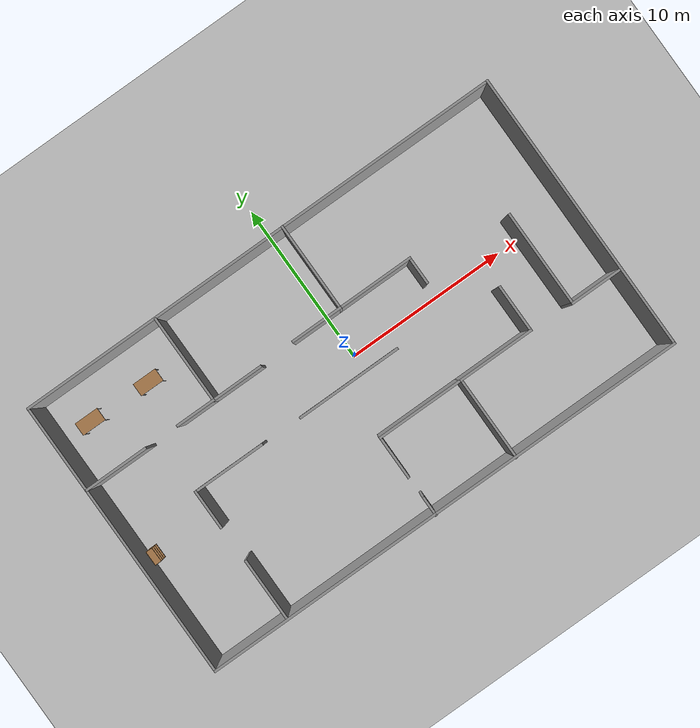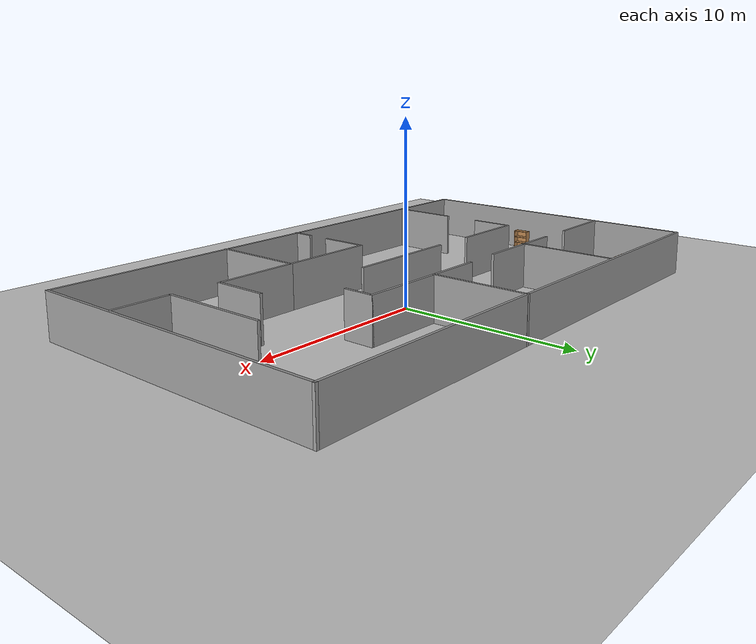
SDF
<sdf version="1.7">
 <world name="default">
  <light name="sun" type="directional">
   <pose>0 0 10 0 -0 0</pose>
   <diffuse>0.8 0.8 0.8 1</diffuse>
   <specular>0.2 0.2 0.2 1</specular>
   <attenuation>
    <range>1000</range>
    <constant>0.9</constant>
    <linear>0.01</linear>
    <quadratic>0.001</quadratic>
   </attenuation>
   <direction>-0.5 0.1 -0.9</direction>
   <spot><inner_angle>0</inner_angle><outer_angle>0</outer_angle><falloff>0</falloff></spot>
  </light>
  <model name="ground_plane">
   <static>1</static>
   <link name="link">
    <collision name="collision">
     <geometry><plane><normal>0 0 1</normal><size>100 100</size></plane></geometry>
     <surface><friction><ode><mu>100</mu><mu2>50</mu2></ode></friction></surface>
    </collision>
    <visual name="visual">
     <cast_shadows>0</cast_shadows>
     <geometry><plane><normal>0 0 1</normal><size>100 100</size></plane></geometry>
     <material>
      <script><uri>file://media/materials/scripts/gazebo.material</uri><name>Gazebo/Grey</name></script>
     </material>
    </visual>
   </link>
  </model>
  <gravity>0 0 -9.8</gravity>
  <magnetic_field>6e-06 2.3e-05 -4.2e-05</magnetic_field>
  <atmosphere type="adiabatic"/>
  <physics type="ode">
   <max_step_size>0.001</max_step_size>
   <real_time_factor>1</real_time_factor>
   <real_time_update_rate>1000</real_time_update_rate>
  </physics>
  <scene><ambient>0.4 0.4 0.4 1</ambient><background>0.7 0.7 0.7 1</background><shadows>1</shadows></scene>
  <audio><device>default</device></audio>
  <spherical_coordinates>
   <surface_model>EARTH_WGS84</surface_model>
   <latitude_deg>0</latitude_deg>
   <longitude_deg>0</longitude_deg>
   <elevation>0</elevation>
   <heading_deg>0</heading_deg>
  </spherical_coordinates>
  <model name="maze">
   <pose>-0.772899 -0.835081 0 0 -0 0</pose>
   <link name="Wall_13">
    <collision name="Wall_13_Collision">
     <geometry><box><size>30.5 0.15 2.5</size></box></geometry>
     <pose>0 0 1.25 0 -0 0</pose>
    </collision>
    <visual name="Wall_13_Visual">
     <pose>0 0 1.25 0 -0 0</pose>
     <geometry><box><size>30.5 0.15 2.5</size></box></geometry>
     <material>
      <script><uri>file://media/materials/scripts/gazebo.material</uri><name>Gazebo/Grey</name></script>
      <ambient>1 1 1 1</ambient>
     </material>
     <meta><layer>0</layer></meta>
    </visual>
    <pose>0 -8.65815 0 0 -0 3.14159</pose>
   </link>
   <link name="Wall_22">
    <collision name="Wall_22_Collision">
     <geometry><box><size>4 0.15 2.5</size></box></geometry>
     <pose>0 0 1.25 0 -0 0</pose>
    </collision>
    <visual name="Wall_22_Visual">
     <pose>0 0 1.25 0 -0 0</pose>
     <geometry><box><size>4 0.15 2.5</size></box></geometry>
     <material>
      <script><uri>file://media/materials/scripts/gazebo.material</uri><name>Gazebo/Grey</name></script>
      <ambient>1 1 1 1</ambient>
     </material>
     <meta><layer>0</layer></meta>
    </visual>
    <pose>-13.229 3.28702 0 0 -0 0</pose>
   </link>
   <link name="Wall_48">
    <collision name="Wall_48_Collision">
     <geometry><box><size>2.5 0.15 2.5</size></box></geometry>
     <pose>0 0 1.25 0 -0 0</pose>
    </collision>
    <visual name="Wall_48_Visual">
     <pose>0 0 1.25 0 -0 0</pose>
     <geometry><box><size>2.5 0.15 2.5</size></box></geometry>
     <material>
      <script><uri>file://media/materials/scripts/gazebo.material</uri><name>Gazebo/Grey</name></script>
      <ambient>1 1 1 1</ambient>
     </material>
     <meta><layer>0</layer></meta>
    </visual>
    <pose>-7.97039 3.27397 0 0 -0 0</pose>
   </link>
   <link name="Wall_49">
    <collision name="Wall_49_Collision">
     <geometry><box><size>5.5 0.15 2.5</size></box></geometry>
     <pose>0 0 1.25 0 -0 0</pose>
    </collision>
    <visual name="Wall_49_Visual">
     <pose>0 0 1.25 0 -0 0</pose>
     <geometry><box><size>5.5 0.15 2.5</size></box></geometry>
     <material>
      <script><uri>file://media/materials/scripts/gazebo.material</uri><name>Gazebo/Grey</name></script>
      <ambient>1 1 1 1</ambient>
     </material>
     <meta><layer>0</layer></meta>
    </visual>
    <pose>-6.79539 5.94897 0 0 -0 1.5708</pose>
   </link>
   <link name="Wall_51">
    <collision name="Wall_51_Collision">
     <geometry><box><size>3.25 0.15 2.5</size></box></geometry>
     <pose>0 0 1.25 0 -0 0</pose>
    </collision>
    <visual name="Wall_51_Visual">
     <pose>0 0 1.25 0 -0 0</pose>
     <geometry><box><size>3.25 0.15 2.5</size></box></geometry>
     <material>
      <script><uri>file://media/materials/scripts/gazebo.material</uri><name>Gazebo/Grey</name></script>
      <ambient>1 1 1 1</ambient>
     </material>
     <meta><layer>0</layer></meta>
    </visual>
    <pose>-5.2454 3.27397 0 0 -0 0</pose>
   </link>
   <link name="Wall_53">
    <collision name="Wall_53_Collision">
     <geometry><box><size>3.25 0.15 2.5</size></box></geometry>
     <pose>0 0 1.25 0 -0 0</pose>
    </collision>
    <visual name="Wall_53_Visual">
     <pose>0 0 1.25 0 -0 0</pose>
     <geometry><box><size>3.25 0.15 2.5</size></box></geometry>
     <material>
      <script><uri>file://media/materials/scripts/gazebo.material</uri><name>Gazebo/Grey</name></script>
      <ambient>1 1 1 1</ambient>
     </material>
     <meta><layer>0</layer></meta>
    </visual>
    <pose>0.092063 3.35377 0 0 -0 0</pose>
   </link>
   <link name="Wall_59">
    <collision name="Wall_59_Collision">
     <geometry><box><size>5.5 0.15 2.5</size></box></geometry>
     <pose>0 0 1.25 0 -0 0</pose>
    </collision>
    <visual name="Wall_59_Visual">
     <pose>0 0 1.25 0 -0 0</pose>
     <geometry><box><size>5.5 0.15 2.5</size></box></geometry>
     <material>
      <script><uri>file://media/materials/scripts/gazebo.material</uri><name>Gazebo/Grey</name></script>
      <ambient>1 1 1 1</ambient>
     </material>
     <meta><layer>0</layer></meta>
    </visual>
    <pose>1.64206 6.02877 0 0 -0 1.5708</pose>
   </link>
   <link name="Wall_6">
    <collision name="Wall_6_Collision">
     <geometry><box><size>17.5 0.15 2.5</size></box></geometry>
     <pose>0 0 1.25 0 -0 0</pose>
    </collision>
    <visual name="Wall_6_Visual">
     <pose>0 0 1.25 0 -0 0</pose>
     <geometry><box><size>17.5 0.15 2.5</size></box></geometry>
     <material>
      <script><uri>file://media/materials/scripts/gazebo.material</uri><name>Gazebo/Grey</name></script>
      <ambient>1 1 1 1</ambient>
     </material>
     <meta><layer>0</layer></meta>
    </visual>
    <pose>15.175 0.016851 0 0 -0 1.5708</pose>
   </link>
   <link name="Wall_61">
    <collision name="Wall_61_Collision">
     <geometry><box><size>3.25 0.15 2.5</size></box></geometry>
     <pose>0 0 1.25 0 -0 0</pose>
    </collision>
    <visual name="Wall_61_Visual">
     <pose>0 0 1.25 0 -0 0</pose>
     <geometry><box><size>3.25 0.15 2.5</size></box></geometry>
     <material>
      <script><uri>file://media/materials/scripts/gazebo.material</uri><name>Gazebo/Grey</name></script>
      <ambient>1 1 1 1</ambient>
     </material>
     <meta><layer>0</layer></meta>
    </visual>
    <pose>13.5256 -3.71427 0 0 -0 3.14159</pose>
   </link>
   <link name="Wall_63">
    <collision name="Wall_63_Collision">
     <geometry><box><size>4.75 0.15 2.5</size></box></geometry>
     <pose>0 0 1.25 0 -0 0</pose>
    </collision>
    <visual name="Wall_63_Visual">
     <pose>0 0 1.25 0 -0 0</pose>
     <geometry><box><size>4.75 0.15 2.5</size></box></geometry>
     <material>
      <script><uri>file://media/materials/scripts/gazebo.material</uri><name>Gazebo/Grey</name></script>
      <ambient>1 1 1 1</ambient>
     </material>
     <meta><layer>0</layer></meta>
    </visual>
    <pose>6.9904 -3.59291 0 0 -0 3.14159</pose>
   </link>
   <link name="Wall_68">
    <collision name="Wall_68_Collision">
     <geometry><box><size>5.25 0.15 2.5</size></box></geometry>
     <pose>0 0 1.25 0 -0 0</pose>
    </collision>
    <visual name="Wall_68_Visual">
     <pose>0 0 1.25 0 -0 0</pose>
     <geometry><box><size>5.25 0.15 2.5</size></box></geometry>
     <material>
      <script><uri>file://media/materials/scripts/gazebo.material</uri><name>Gazebo/Grey</name></script>
      <ambient>1 1 1 1</ambient>
     </material>
     <meta><layer>0</layer></meta>
    </visual>
    <pose>4.6904 -6.14291 0 0 -0 -1.5708</pose>
   </link>
   <link name="Wall_7">
    <collision name="Wall_7_Collision">
     <geometry><box><size>30.5 0.15 2.5</size></box></geometry>
     <pose>0 0 1.25 0 -0 0</pose>
    </collision>
    <visual name="Wall_7_Visual">
     <pose>0 0 1.25 0 -0 0</pose>
     <geometry><box><size>30.5 0.15 2.5</size></box></geometry>
     <material>
      <script><uri>file://media/materials/scripts/gazebo.material</uri><name>Gazebo/Grey</name></script>
      <ambient>1 1 1 1</ambient>
     </material>
     <meta><layer>0</layer></meta>
    </visual>
    <pose>0 8.69185 0 0 -0 3.14159</pose>
   </link>
   <link name="Wall_70">
    <collision name="Wall_70_Collision">
     <geometry><box><size>5.5 0.15 2.5</size></box></geometry>
     <pose>0 0 1.25 0 -0 0</pose>
    </collision>
    <visual name="Wall_70_Visual">
     <pose>0 0 1.25 0 -0 0</pose>
     <geometry><box><size>5.5 0.15 2.5</size></box></geometry>
     <material>
      <script><uri>file://media/materials/scripts/gazebo.material</uri><name>Gazebo/Grey</name></script>
      <ambient>1 1 1 1</ambient>
     </material>
     <meta><layer>0</layer></meta>
    </visual>
    <pose>2.0154 -3.59291 0 0 -0 3.14159</pose>
   </link>
   <link name="Wall_71">
    <collision name="Wall_71_Collision">
     <geometry><box><size>2.75 0.15 2.5</size></box></geometry>
     <pose>0 0 1.25 0 -0 0</pose>
    </collision>
    <visual name="Wall_71_Visual">
     <pose>0 0 1.25 0 -0 0</pose>
     <geometry><box><size>2.75 0.15 2.5</size></box></geometry>
     <material>
      <script><uri>file://media/materials/scripts/gazebo.material</uri><name>Gazebo/Grey</name></script>
      <ambient>1 1 1 1</ambient>
     </material>
     <meta><layer>0</layer></meta>
    </visual>
    <pose>-0.659598 -4.89291 0 0 -0 -1.5708</pose>
   </link>
   <link name="Wall_75">
    <collision name="Wall_75_Collision">
     <geometry><box><size>1.25 0.15 2.5</size></box></geometry>
     <pose>0 0 1.25 0 -0 0</pose>
    </collision>
    <visual name="Wall_75_Visual">
     <pose>0 0 1.25 0 -0 0</pose>
     <geometry><box><size>1.25 0.15 2.5</size></box></geometry>
     <material>
      <script><uri>file://media/materials/scripts/gazebo.material</uri><name>Gazebo/Grey</name></script>
      <ambient>1 1 1 1</ambient>
     </material>
     <meta><layer>0</layer></meta>
    </visual>
    <pose>-0.637959 -8.15377 0 0 -0 -1.5708</pose>
   </link>
   <link name="Wall_77">
    <collision name="Wall_77_Collision">
     <geometry><box><size>4 0.15 2.5</size></box></geometry>
     <pose>0 0 1.25 0 -0 0</pose>
    </collision>
    <visual name="Wall_77_Visual">
     <pose>0 0 1.25 0 -0 0</pose>
     <geometry><box><size>4 0.15 2.5</size></box></geometry>
     <material>
      <script><uri>file://media/materials/scripts/gazebo.material</uri><name>Gazebo/Grey</name></script>
      <ambient>1 1 1 1</ambient>
     </material>
     <meta><layer>0</layer></meta>
    </visual>
    <pose>-10.403 -6.73605 0 0 -0 1.5708</pose>
   </link>
   <link name="Wall_8">
    <collision name="Wall_8_Collision">
     <geometry><box><size>17.4296 0.15 2.5</size></box></geometry>
     <pose>0 0 1.25 0 -0 0</pose>
    </collision>
    <visual name="Wall_8_Visual">
     <pose>0 0 1.25 0 -0 0</pose>
     <geometry><box><size>17.4296 0.15 2.5</size></box></geometry>
     <material>
      <script><uri>file://media/materials/scripts/gazebo.material</uri><name>Gazebo/Grey</name></script>
      <ambient>1 1 1 1</ambient>
     </material>
     <meta><layer>0</layer></meta>
    </visual>
    <pose>-15.175 0.05203 0 0 -0 -1.5708</pose>
   </link>
   <link name="Wall_81">
    <collision name="Wall_81_Collision">
     <geometry><box><size>2.5 0.15 2.5</size></box></geometry>
     <pose>0 0 1.25 0 -0 0</pose>
    </collision>
    <visual name="Wall_81_Visual">
     <pose>0 0 1.25 0 -0 0</pose>
     <geometry><box><size>2.5 0.15 2.5</size></box></geometry>
     <material>
      <script><uri>file://media/materials/scripts/gazebo.material</uri><name>Gazebo/Grey</name></script>
      <ambient>1 1 1 1</ambient>
     </material>
     <meta><layer>0</layer></meta>
    </visual>
    <pose>-10.4382 -1.36495 0 0 -0 1.5708</pose>
   </link>
   <link name="Wall_82">
    <collision name="Wall_82_Collision">
     <geometry><box><size>4.5 0.15 2.5</size></box></geometry>
     <pose>0 0 1.25 0 -0 0</pose>
    </collision>
    <visual name="Wall_82_Visual">
     <pose>0 0 1.25 0 -0 0</pose>
     <geometry><box><size>4.5 0.15 2.5</size></box></geometry>
     <material>
      <script><uri>file://media/materials/scripts/gazebo.material</uri><name>Gazebo/Grey</name></script>
      <ambient>1 1 1 1</ambient>
     </material>
     <meta><layer>0</layer></meta>
    </visual>
    <pose>-8.2632 -0.189948 0 0 -0 0</pose>
   </link>
   <link name="Wall_84">
    <collision name="Wall_84_Collision">
     <geometry><box><size>6.5 0.15 2.5</size></box></geometry>
     <pose>0 0 1.25 0 -0 0</pose>
    </collision>
    <visual name="Wall_84_Visual">
     <pose>0 0 1.25 0 -0 0</pose>
     <geometry><box><size>6.5 0.15 2.5</size></box></geometry>
     <material>
      <script><uri>file://media/materials/scripts/gazebo.material</uri><name>Gazebo/Grey</name></script>
      <ambient>1 1 1 1</ambient>
     </material>
     <meta><layer>0</layer></meta>
    </visual>
    <pose>-0.332988 -0.218149 0 0 -0 0</pose>
   </link>
   <link name="Wall_86">
    <collision name="Wall_86_Collision">
     <geometry><box><size>4.75 0.15 2.5</size></box></geometry>
     <pose>0 0 1.25 0 -0 0</pose>
    </collision>
    <visual name="Wall_86_Visual">
     <pose>0 0 1.25 0 -0 0</pose>
     <geometry><box><size>4.75 0.15 2.5</size></box></geometry>
     <material>
      <script><uri>file://media/materials/scripts/gazebo.material</uri><name>Gazebo/Grey</name></script>
      <ambient>1 1 1 1</ambient>
     </material>
     <meta><layer>0</layer></meta>
    </visual>
    <pose>3.94206 3.35377 0 0 -0 0</pose>
   </link>
   <link name="Wall_88">
    <collision name="Wall_88_Collision">
     <geometry><box><size>1.75 0.15 2.5</size></box></geometry>
     <pose>0 0 1.25 0 -0 0</pose>
    </collision>
    <visual name="Wall_88_Visual">
     <pose>0 0 1.25 0 -0 0</pose>
     <geometry><box><size>1.75 0.15 2.5</size></box></geometry>
     <material>
      <script><uri>file://media/materials/scripts/gazebo.material</uri><name>Gazebo/Grey</name></script>
      <ambient>1 1 1 1</ambient>
     </material>
     <meta><layer>0</layer></meta>
    </visual>
    <pose>6.24206 2.55377 0 0 -0 -1.5708</pose>
   </link>
   <link name="Wall_90">
    <collision name="Wall_90_Collision">
     <geometry><box><size>6 0.15 2.5</size></box></geometry>
     <pose>0 0 1.25 0 -0 0</pose>
    </collision>
    <visual name="Wall_90_Visual">
     <pose>0 0 1.25 0 -0 0</pose>
     <geometry><box><size>6 0.15 2.5</size></box></geometry>
     <material>
      <script><uri>file://media/materials/scripts/gazebo.material</uri><name>Gazebo/Grey</name></script>
      <ambient>1 1 1 1</ambient>
     </material>
     <meta><layer>0</layer></meta>
    </visual>
    <pose>11.9756 -0.789274 0 0 -0 1.5708</pose>
   </link>
   <link name="Wall_92">
    <collision name="Wall_92_Collision">
     <geometry><box><size>3 0.15 2.5</size></box></geometry>
     <pose>0 0 1.25 0 -0 0</pose>
    </collision>
    <visual name="Wall_92_Visual">
     <pose>0 0 1.25 0 -0 0</pose>
     <geometry><box><size>3 0.15 2.5</size></box></geometry>
     <material>
      <script><uri>file://media/materials/scripts/gazebo.material</uri><name>Gazebo/Grey</name></script>
      <ambient>1 1 1 1</ambient>
     </material>
     <meta><layer>0</layer></meta>
    </visual>
    <pose>9.2904 -2.16791 0 0 -0 1.5708</pose>
   </link>
   <static>1</static>
  </model>
  <model name="bookshelf">
   <static>1</static>
   <link name="link">
    <inertial><mass>1</mass></inertial>
    <collision name="back">
     <pose>0 0.005 0.6 0 -0 0</pose>
     <geometry><box><size>0.9 0.01 1.2</size></box></geometry>
    </collision>
    <visual name="visual1">
     <pose>0 0.005 0.6 0 -0 0</pose>
     <geometry><box><size>0.9 0.01 1.2</size></box></geometry>
     <material>
      <script><uri>file://media/materials/scripts/gazebo.material</uri><name>Gazebo/Wood</name></script>
     </material>
    </visual>
    <collision name="left_side">
     <pose>0.45 -0.195 0.6 0 -0 0</pose>
     <geometry><box><size>0.02 0.4 1.2</size></box></geometry>
    </collision>
    <visual name="visual2">
     <pose>0.45 -0.195 0.6 0 -0 0</pose>
     <geometry><box><size>0.02 0.4 1.2</size></box></geometry>
     <material>
      <script><uri>file://media/materials/scripts/gazebo.material</uri><name>Gazebo/Wood</name></script>
     </material>
    </visual>
    <collision name="right_side">
     <pose>-0.45 -0.195 0.6 0 -0 0</pose>
     <geometry><box><size>0.02 0.4 1.2</size></box></geometry>
    </collision>
    <visual name="visual3">
     <pose>-0.45 -0.195 0.6 0 -0 0</pose>
     <geometry><box><size>0.02 0.4 1.2</size></box></geometry>
     <material>
      <script><uri>file://media/materials/scripts/gazebo.material</uri><name>Gazebo/Wood</name></script>
     </material>
    </visual>
    <collision name="bottom">
     <pose>0 -0.195 0.03 0 -0 0</pose>
     <geometry><box><size>0.88 0.4 0.06</size></box></geometry>
    </collision>
    <visual name="visual4">
     <pose>0 -0.195 0.03 0 -0 0</pose>
     <geometry><box><size>0.88 0.4 0.06</size></box></geometry>
     <material>
      <script><uri>file://media/materials/scripts/gazebo.material</uri><name>Gazebo/Wood</name></script>
     </material>
    </visual>
    <collision name="top">
     <pose>0 -0.195 1.19 0 -0 0</pose>
     <geometry><box><size>0.88 0.4 0.02</size></box></geometry>
    </collision>
    <visual name="visual5">
     <pose>0 -0.195 1.19 0 -0 0</pose>
     <geometry><box><size>0.88 0.4 0.02</size></box></geometry>
     <material>
      <script><uri>file://media/materials/scripts/gazebo.material</uri><name>Gazebo/Wood</name></script>
     </material>
    </visual>
    <collision name="low_shelf">
     <pose>0 -0.195 0.43 0 -0 0</pose>
     <geometry><box><size>0.88 0.4 0.02</size></box></geometry>
    </collision>
    <visual name="visual6">
     <pose>0 -0.195 0.43 0 -0 0</pose>
     <geometry><box><size>0.88 0.4 0.02</size></box></geometry>
     <material>
      <script><uri>file://media/materials/scripts/gazebo.material</uri><name>Gazebo/Wood</name></script>
     </material>
    </visual>
    <collision name="high_shelf">
     <pose>0 -0.195 0.8 0 -0 0</pose>
     <geometry><box><size>0.88 0.4 0.02</size></box></geometry>
    </collision>
    <visual name="visual7">
     <pose>0 -0.195 0.8 0 -0 0</pose>
     <geometry><box><size>0.88 0.4 0.02</size></box></geometry>
     <material>
      <script><uri>file://media/materials/scripts/gazebo.material</uri><name>Gazebo/Wood</name></script>
     </material>
    </visual>
   </link>
   <pose>-15.6548 -2.59773 0 0 -0 1.57883</pose>
  </model>
  <model name="table">
   <static>1</static>
   <link name="link">
    <collision name="surface">
     <pose>0 0 1 0 -0 0</pose>
     <geometry><box><size>1.5 0.8 0.03</size></box></geometry>
     <surface><friction><ode><mu>0.6</mu><mu2>0.6</mu2></ode></friction></surface>
    </collision>
    <visual name="visual1">
     <pose>0 0 1 0 -0 0</pose>
     <geometry><box><size>1.5 0.8 0.03</size></box></geometry>
     <material>
      <script><uri>file://media/materials/scripts/gazebo.material</uri><name>Gazebo/Wood</name></script>
     </material>
    </visual>
    <collision name="front_left_leg">
     <pose>0.68 0.38 0.5 0 -0 0</pose>
     <geometry><cylinder><radius>0.02</radius><length>1</length></cylinder></geometry>
    </collision>
    <visual name="front_left_leg">
     <pose>0.68 0.38 0.5 0 -0 0</pose>
     <geometry><cylinder><radius>0.02</radius><length>1</length></cylinder></geometry>
     <material>
      <script><uri>file://media/materials/scripts/gazebo.material</uri><name>Gazebo/Grey</name></script>
     </material>
    </visual>
    <collision name="front_right_leg">
     <pose>0.68 -0.38 0.5 0 -0 0</pose>
     <geometry><cylinder><radius>0.02</radius><length>1</length></cylinder></geometry>
    </collision>
    <visual name="front_right_leg">
     <pose>0.68 -0.38 0.5 0 -0 0</pose>
     <geometry><cylinder><radius>0.02</radius><length>1</length></cylinder></geometry>
     <material>
      <script><uri>file://media/materials/scripts/gazebo.material</uri><name>Gazebo/Grey</name></script>
     </material>
    </visual>
    <collision name="back_right_leg">
     <pose>-0.68 -0.38 0.5 0 -0 0</pose>
     <geometry><cylinder><radius>0.02</radius><length>1</length></cylinder></geometry>
    </collision>
    <visual name="back_right_leg">
     <pose>-0.68 -0.38 0.5 0 -0 0</pose>
     <geometry><cylinder><radius>0.02</radius><length>1</length></cylinder></geometry>
     <material>
      <script><uri>file://media/materials/scripts/gazebo.material</uri><name>Gazebo/Grey</name></script>
     </material>
    </visual>
    <collision name="back_left_leg">
     <pose>-0.68 0.38 0.5 0 -0 0</pose>
     <geometry><cylinder><radius>0.02</radius><length>1</length></cylinder></geometry>
    </collision>
    <visual name="back_left_leg">
     <pose>-0.68 0.38 0.5 0 -0 0</pose>
     <geometry><cylinder><radius>0.02</radius><length>1</length></cylinder></geometry>
     <material>
      <script><uri>file://media/materials/scripts/gazebo.material</uri><name>Gazebo/Grey</name></script>
     </material>
    </visual>
   </link>
   <pose>-14.0348 5.52593 0 0 -0 0</pose>
  </model>
  <model name="table_0">
   <static>1</static>
   <link name="link">
    <collision name="surface">
     <pose>0 0 1 0 -0 0</pose>
     <geometry><box><size>1.5 0.8 0.03</size></box></geometry>
     <surface><friction><ode><mu>0.6</mu><mu2>0.6</mu2></ode></friction></surface>
    </collision>
    <visual name="visual1">
     <pose>0 0 1 0 -0 0</pose>
     <geometry><box><size>1.5 0.8 0.03</size></box></geometry>
     <material>
      <script><uri>file://media/materials/scripts/gazebo.material</uri><name>Gazebo/Wood</name></script>
     </material>
    </visual>
    <collision name="front_left_leg">
     <pose>0.68 0.38 0.5 0 -0 0</pose>
     <geometry><cylinder><radius>0.02</radius><length>1</length></cylinder></geometry>
    </collision>
    <visual name="front_left_leg">
     <pose>0.68 0.38 0.5 0 -0 0</pose>
     <geometry><cylinder><radius>0.02</radius><length>1</length></cylinder></geometry>
     <material>
      <script><uri>file://media/materials/scripts/gazebo.material</uri><name>Gazebo/Grey</name></script>
     </material>
    </visual>
    <collision name="front_right_leg">
     <pose>0.68 -0.38 0.5 0 -0 0</pose>
     <geometry><cylinder><radius>0.02</radius><length>1</length></cylinder></geometry>
    </collision>
    <visual name="front_right_leg">
     <pose>0.68 -0.38 0.5 0 -0 0</pose>
     <geometry><cylinder><radius>0.02</radius><length>1</length></cylinder></geometry>
     <material>
      <script><uri>file://media/materials/scripts/gazebo.material</uri><name>Gazebo/Grey</name></script>
     </material>
    </visual>
    <collision name="back_right_leg">
     <pose>-0.68 -0.38 0.5 0 -0 0</pose>
     <geometry><cylinder><radius>0.02</radius><length>1</length></cylinder></geometry>
    </collision>
    <visual name="back_right_leg">
     <pose>-0.68 -0.38 0.5 0 -0 0</pose>
     <geometry><cylinder><radius>0.02</radius><length>1</length></cylinder></geometry>
     <material>
      <script><uri>file://media/materials/scripts/gazebo.material</uri><name>Gazebo/Grey</name></script>
     </material>
    </visual>
    <collision name="back_left_leg">
     <pose>-0.68 0.38 0.5 0 -0 0</pose>
     <geometry><cylinder><radius>0.02</radius><length>1</length></cylinder></geometry>
    </collision>
    <visual name="back_left_leg">
     <pose>-0.68 0.38 0.5 0 -0 0</pose>
     <geometry><cylinder><radius>0.02</radius><length>1</length></cylinder></geometry>
     <material>
      <script><uri>file://media/materials/scripts/gazebo.material</uri><name>Gazebo/Grey</name></script>
     </material>
    </visual>
   </link>
   <pose>-10.1449 5.43748 0 0 -0 0</pose>
  </model>
 </world>
</sdf>
